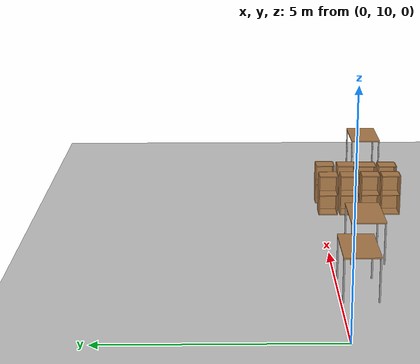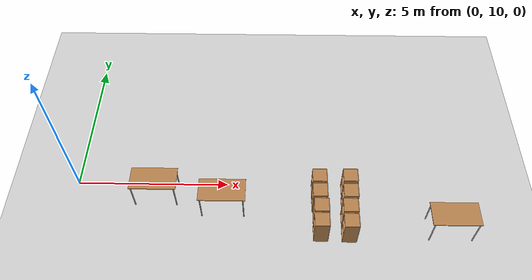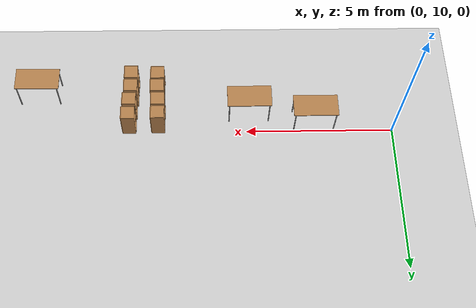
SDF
<sdf version="1.7">
 <world name="default">
  <model name="ground_plane">
   <static>1</static>
   <link name="link">
    <collision name="collision">
     <geometry><plane><normal>0 0 1</normal><size>100 100</size></plane></geometry>
     <surface><friction><ode><mu>100</mu><mu2>50</mu2></ode></friction></surface>
    </collision>
    <visual name="visual">
     <cast_shadows>0</cast_shadows>
     <geometry><plane><normal>0 0 1</normal><size>100 100</size></plane></geometry>
     <material>
      <script><uri>file://media/materials/scripts/gazebo.material</uri><name>Gazebo/Grey</name></script>
     </material>
    </visual>
   </link>
  </model>
  <model name="table_0_clone">
   <static>1</static>
   <link name="link">
    <collision name="surface">
     <pose>0 0 1 0 -0 0</pose>
     <geometry><box><size>1.5 0.8 0.03</size></box></geometry>
     <surface><friction><ode><mu>0.6</mu><mu2>0.6</mu2></ode></friction></surface>
    </collision>
    <visual name="visual1">
     <pose>0 0 1 0 -0 0</pose>
     <geometry><box><size>1.5 0.8 0.03</size></box></geometry>
     <material>
      <script><uri>file://media/materials/scripts/gazebo.material</uri><name>Gazebo/Wood</name></script>
     </material>
    </visual>
    <collision name="front_left_leg">
     <pose>0.68 0.38 0.5 0 -0 0</pose>
     <geometry><cylinder><radius>0.02</radius><length>1</length></cylinder></geometry>
    </collision>
    <visual name="front_left_leg">
     <pose>0.68 0.38 0.5 0 -0 0</pose>
     <geometry><cylinder><radius>0.02</radius><length>1</length></cylinder></geometry>
     <material>
      <script><uri>file://media/materials/scripts/gazebo.material</uri><name>Gazebo/Grey</name></script>
     </material>
    </visual>
    <collision name="front_right_leg">
     <pose>0.68 -0.38 0.5 0 -0 0</pose>
     <geometry><cylinder><radius>0.02</radius><length>1</length></cylinder></geometry>
    </collision>
    <visual name="front_right_leg">
     <pose>0.68 -0.38 0.5 0 -0 0</pose>
     <geometry><cylinder><radius>0.02</radius><length>1</length></cylinder></geometry>
     <material>
      <script><uri>file://media/materials/scripts/gazebo.material</uri><name>Gazebo/Grey</name></script>
     </material>
    </visual>
    <collision name="back_right_leg">
     <pose>-0.68 -0.38 0.5 0 -0 0</pose>
     <geometry><cylinder><radius>0.02</radius><length>1</length></cylinder></geometry>
    </collision>
    <visual name="back_right_leg">
     <pose>-0.68 -0.38 0.5 0 -0 0</pose>
     <geometry><cylinder><radius>0.02</radius><length>1</length></cylinder></geometry>
     <material>
      <script><uri>file://media/materials/scripts/gazebo.material</uri><name>Gazebo/Grey</name></script>
     </material>
    </visual>
    <collision name="back_left_leg">
     <pose>-0.68 0.38 0.5 0 -0 0</pose>
     <geometry><cylinder><radius>0.02</radius><length>1</length></cylinder></geometry>
    </collision>
    <visual name="back_left_leg">
     <pose>-0.68 0.38 0.5 0 -0 0</pose>
     <geometry><cylinder><radius>0.02</radius><length>1</length></cylinder></geometry>
     <material>
      <script><uri>file://media/materials/scripts/gazebo.material</uri><name>Gazebo/Grey</name></script>
     </material>
    </visual>
   </link>
   <pose>12.1609 8.42385 0 0 -0 0</pose>
  </model>
  <model name="table_0_clone_clone">
   <static>1</static>
   <link name="link">
    <collision name="surface">
     <pose>0 0 1 0 -0 0</pose>
     <geometry><box><size>1.5 0.8 0.03</size></box></geometry>
     <surface><friction><ode><mu>0.6</mu><mu2>0.6</mu2></ode></friction></surface>
    </collision>
    <visual name="visual1">
     <pose>0 0 1 0 -0 0</pose>
     <geometry><box><size>1.5 0.8 0.03</size></box></geometry>
     <material>
      <script><uri>file://media/materials/scripts/gazebo.material</uri><name>Gazebo/Wood</name></script>
     </material>
    </visual>
    <collision name="front_left_leg">
     <pose>0.68 0.38 0.5 0 -0 0</pose>
     <geometry><cylinder><radius>0.02</radius><length>1</length></cylinder></geometry>
    </collision>
    <visual name="front_left_leg">
     <pose>0.68 0.38 0.5 0 -0 0</pose>
     <geometry><cylinder><radius>0.02</radius><length>1</length></cylinder></geometry>
     <material>
      <script><uri>file://media/materials/scripts/gazebo.material</uri><name>Gazebo/Grey</name></script>
     </material>
    </visual>
    <collision name="front_right_leg">
     <pose>0.68 -0.38 0.5 0 -0 0</pose>
     <geometry><cylinder><radius>0.02</radius><length>1</length></cylinder></geometry>
    </collision>
    <visual name="front_right_leg">
     <pose>0.68 -0.38 0.5 0 -0 0</pose>
     <geometry><cylinder><radius>0.02</radius><length>1</length></cylinder></geometry>
     <material>
      <script><uri>file://media/materials/scripts/gazebo.material</uri><name>Gazebo/Grey</name></script>
     </material>
    </visual>
    <collision name="back_right_leg">
     <pose>-0.68 -0.38 0.5 0 -0 0</pose>
     <geometry><cylinder><radius>0.02</radius><length>1</length></cylinder></geometry>
    </collision>
    <visual name="back_right_leg">
     <pose>-0.68 -0.38 0.5 0 -0 0</pose>
     <geometry><cylinder><radius>0.02</radius><length>1</length></cylinder></geometry>
     <material>
      <script><uri>file://media/materials/scripts/gazebo.material</uri><name>Gazebo/Grey</name></script>
     </material>
    </visual>
    <collision name="back_left_leg">
     <pose>-0.68 0.38 0.5 0 -0 0</pose>
     <geometry><cylinder><radius>0.02</radius><length>1</length></cylinder></geometry>
    </collision>
    <visual name="back_left_leg">
     <pose>-0.68 0.38 0.5 0 -0 0</pose>
     <geometry><cylinder><radius>0.02</radius><length>1</length></cylinder></geometry>
     <material>
      <script><uri>file://media/materials/scripts/gazebo.material</uri><name>Gazebo/Grey</name></script>
     </material>
    </visual>
   </link>
   <pose>4.91658 9.1879 0 0 -0 0</pose>
  </model>
  <model name="table_0_clone_clone_0">
   <static>1</static>
   <link name="link">
    <collision name="surface">
     <pose>0 0 1 0 -0 0</pose>
     <geometry><box><size>1.5 0.8 0.03</size></box></geometry>
     <surface><friction><ode><mu>0.6</mu><mu2>0.6</mu2></ode></friction></surface>
    </collision>
    <visual name="visual1">
     <pose>0 0 1 0 -0 0</pose>
     <geometry><box><size>1.5 0.8 0.03</size></box></geometry>
     <material>
      <script><uri>file://media/materials/scripts/gazebo.material</uri><name>Gazebo/Wood</name></script>
     </material>
    </visual>
    <collision name="front_left_leg">
     <pose>0.68 0.38 0.5 0 -0 0</pose>
     <geometry><cylinder><radius>0.02</radius><length>1</length></cylinder></geometry>
    </collision>
    <visual name="front_left_leg">
     <pose>0.68 0.38 0.5 0 -0 0</pose>
     <geometry><cylinder><radius>0.02</radius><length>1</length></cylinder></geometry>
     <material>
      <script><uri>file://media/materials/scripts/gazebo.material</uri><name>Gazebo/Grey</name></script>
     </material>
    </visual>
    <collision name="front_right_leg">
     <pose>0.68 -0.38 0.5 0 -0 0</pose>
     <geometry><cylinder><radius>0.02</radius><length>1</length></cylinder></geometry>
    </collision>
    <visual name="front_right_leg">
     <pose>0.68 -0.38 0.5 0 -0 0</pose>
     <geometry><cylinder><radius>0.02</radius><length>1</length></cylinder></geometry>
     <material>
      <script><uri>file://media/materials/scripts/gazebo.material</uri><name>Gazebo/Grey</name></script>
     </material>
    </visual>
    <collision name="back_right_leg">
     <pose>-0.68 -0.38 0.5 0 -0 0</pose>
     <geometry><cylinder><radius>0.02</radius><length>1</length></cylinder></geometry>
    </collision>
    <visual name="back_right_leg">
     <pose>-0.68 -0.38 0.5 0 -0 0</pose>
     <geometry><cylinder><radius>0.02</radius><length>1</length></cylinder></geometry>
     <material>
      <script><uri>file://media/materials/scripts/gazebo.material</uri><name>Gazebo/Grey</name></script>
     </material>
    </visual>
    <collision name="back_left_leg">
     <pose>-0.68 0.38 0.5 0 -0 0</pose>
     <geometry><cylinder><radius>0.02</radius><length>1</length></cylinder></geometry>
    </collision>
    <visual name="back_left_leg">
     <pose>-0.68 0.38 0.5 0 -0 0</pose>
     <geometry><cylinder><radius>0.02</radius><length>1</length></cylinder></geometry>
     <material>
      <script><uri>file://media/materials/scripts/gazebo.material</uri><name>Gazebo/Grey</name></script>
     </material>
    </visual>
   </link>
   <pose>2.69967 9.5794 0 0 -0 0</pose>
  </model>
  <model name="cabinet_3_clone">
   <static>1</static>
   <link name="cabinet_bottom_plate">
    <inertial>
     <pose>0 0 -1 0 -0 0</pose>
     <inertia><ixx>2.05</ixx><ixy>0</ixy><ixz>0</ixz><iyy>2.05</iyy><iyz>0</iyz><izz>2.05</izz></inertia>
     <mass>25</mass>
    </inertial>
    <collision name="cabinet_bottom_plate_geom">
     <pose>0 0 0.01 0 -0 0</pose>
     <geometry><box><size>0.45 0.45 0.02</size></box></geometry>
    </collision>
    <visual name="cabinet_bottom_plate_geom_visual">
     <pose>0 0 0.01 0 -0 0</pose>
     <geometry><box><size>0.45 0.45 0.02</size></box></geometry>
     <material>
      <script><uri>file://media/materials/scripts/gazebo.material</uri><name>Gazebo/Wood</name></script>
     </material>
    </visual>
    <collision name="cabinet_bottom_plate_geom_cabinet_back_plate">
     <pose>0.235 0 0.51 0 -0 0</pose>
     <geometry><box><size>0.02 0.45 1.02</size></box></geometry>
    </collision>
    <visual name="cabinet_bottom_plate_geom_cabinet_back_plate_visual">
     <pose>0.235 0 0.51 0 -0 0</pose>
     <geometry><box><size>0.02 0.45 1.02</size></box></geometry>
     <material>
      <script><uri>file://media/materials/scripts/gazebo.material</uri><name>Gazebo/Wood</name></script>
     </material>
    </visual>
    <collision name="cabinet_bottom_plate_geom_cabinet_left_plate">
     <pose>0 0.235 0.51 0 -0 0</pose>
     <geometry><box><size>0.45 0.02 1.02</size></box></geometry>
    </collision>
    <visual name="cabinet_bottom_plate_geom_cabinet_left_plate_visual">
     <pose>0 0.235 0.51 0 -0 0</pose>
     <geometry><box><size>0.45 0.02 1.02</size></box></geometry>
     <material>
      <script><uri>file://media/materials/scripts/gazebo.material</uri><name>Gazebo/Wood</name></script>
     </material>
    </visual>
    <collision name="cabinet_bottom_plate_geom_cabinet_middle_plate">
     <pose>0 0 0.51 0 -0 0</pose>
     <geometry><box><size>0.45 0.45 0.02</size></box></geometry>
    </collision>
    <visual name="cabinet_bottom_plate_geom_cabinet_middle_plate_visual">
     <pose>0 0 0.51 0 -0 0</pose>
     <geometry><box><size>0.45 0.45 0.02</size></box></geometry>
     <material>
      <script><uri>file://media/materials/scripts/gazebo.material</uri><name>Gazebo/Wood</name></script>
     </material>
    </visual>
    <collision name="cabinet_bottom_plate_geom_cabinet_right_plate">
     <pose>0 -0.235 0.51 0 -0 0</pose>
     <geometry><box><size>0.45 0.02 1.02</size></box></geometry>
    </collision>
    <visual name="cabinet_bottom_plate_geom_cabinet_right_plate_visual">
     <pose>0 -0.235 0.51 0 -0 0</pose>
     <geometry><box><size>0.45 0.02 1.02</size></box></geometry>
     <material>
      <script><uri>file://media/materials/scripts/gazebo.material</uri><name>Gazebo/Wood</name></script>
     </material>
    </visual>
    <collision name="cabinet_bottom_plate_geom_cabinet_top_plate">
     <pose>0 0 1.01 0 -0 0</pose>
     <geometry><box><size>0.45 0.45 0.02</size></box></geometry>
    </collision>
    <visual name="cabinet_bottom_plate_geom_cabinet_top_plate_visual">
     <pose>0 0 1.01 0 -0 0</pose>
     <geometry><box><size>0.45 0.45 0.02</size></box></geometry>
     <material>
      <script><uri>file://media/materials/scripts/gazebo.material</uri><name>Gazebo/Wood</name></script>
     </material>
    </visual>
   </link>
   <pose>8.95329 8.16551 0 0 -0 0</pose>
  </model>
  <model name="cabinet_3_clone_0">
   <static>1</static>
   <link name="cabinet_bottom_plate">
    <inertial>
     <pose>0 0 -1 0 -0 0</pose>
     <inertia><ixx>2.05</ixx><ixy>0</ixy><ixz>0</ixz><iyy>2.05</iyy><iyz>0</iyz><izz>2.05</izz></inertia>
     <mass>25</mass>
    </inertial>
    <collision name="cabinet_bottom_plate_geom">
     <pose>0 0 0.01 0 -0 0</pose>
     <geometry><box><size>0.45 0.45 0.02</size></box></geometry>
    </collision>
    <visual name="cabinet_bottom_plate_geom_visual">
     <pose>0 0 0.01 0 -0 0</pose>
     <geometry><box><size>0.45 0.45 0.02</size></box></geometry>
     <material>
      <script><uri>file://media/materials/scripts/gazebo.material</uri><name>Gazebo/Wood</name></script>
     </material>
    </visual>
    <collision name="cabinet_bottom_plate_geom_cabinet_back_plate">
     <pose>0.235 0 0.51 0 -0 0</pose>
     <geometry><box><size>0.02 0.45 1.02</size></box></geometry>
    </collision>
    <visual name="cabinet_bottom_plate_geom_cabinet_back_plate_visual">
     <pose>0.235 0 0.51 0 -0 0</pose>
     <geometry><box><size>0.02 0.45 1.02</size></box></geometry>
     <material>
      <script><uri>file://media/materials/scripts/gazebo.material</uri><name>Gazebo/Wood</name></script>
     </material>
    </visual>
    <collision name="cabinet_bottom_plate_geom_cabinet_left_plate">
     <pose>0 0.235 0.51 0 -0 0</pose>
     <geometry><box><size>0.45 0.02 1.02</size></box></geometry>
    </collision>
    <visual name="cabinet_bottom_plate_geom_cabinet_left_plate_visual">
     <pose>0 0.235 0.51 0 -0 0</pose>
     <geometry><box><size>0.45 0.02 1.02</size></box></geometry>
     <material>
      <script><uri>file://media/materials/scripts/gazebo.material</uri><name>Gazebo/Wood</name></script>
     </material>
    </visual>
    <collision name="cabinet_bottom_plate_geom_cabinet_middle_plate">
     <pose>0 0 0.51 0 -0 0</pose>
     <geometry><box><size>0.45 0.45 0.02</size></box></geometry>
    </collision>
    <visual name="cabinet_bottom_plate_geom_cabinet_middle_plate_visual">
     <pose>0 0 0.51 0 -0 0</pose>
     <geometry><box><size>0.45 0.45 0.02</size></box></geometry>
     <material>
      <script><uri>file://media/materials/scripts/gazebo.material</uri><name>Gazebo/Wood</name></script>
     </material>
    </visual>
    <collision name="cabinet_bottom_plate_geom_cabinet_right_plate">
     <pose>0 -0.235 0.51 0 -0 0</pose>
     <geometry><box><size>0.45 0.02 1.02</size></box></geometry>
    </collision>
    <visual name="cabinet_bottom_plate_geom_cabinet_right_plate_visual">
     <pose>0 -0.235 0.51 0 -0 0</pose>
     <geometry><box><size>0.45 0.02 1.02</size></box></geometry>
     <material>
      <script><uri>file://media/materials/scripts/gazebo.material</uri><name>Gazebo/Wood</name></script>
     </material>
    </visual>
    <collision name="cabinet_bottom_plate_geom_cabinet_top_plate">
     <pose>0 0 1.01 0 -0 0</pose>
     <geometry><box><size>0.45 0.45 0.02</size></box></geometry>
    </collision>
    <visual name="cabinet_bottom_plate_geom_cabinet_top_plate_visual">
     <pose>0 0 1.01 0 -0 0</pose>
     <geometry><box><size>0.45 0.45 0.02</size></box></geometry>
     <material>
      <script><uri>file://media/materials/scripts/gazebo.material</uri><name>Gazebo/Wood</name></script>
     </material>
    </visual>
   </link>
   <pose>8.96151 8.69848 0 0 -0 0</pose>
  </model>
  <model name="cabinet_3_clone_1">
   <static>1</static>
   <link name="cabinet_bottom_plate">
    <inertial>
     <pose>0 0 -1 0 -0 0</pose>
     <inertia><ixx>2.05</ixx><ixy>0</ixy><ixz>0</ixz><iyy>2.05</iyy><iyz>0</iyz><izz>2.05</izz></inertia>
     <mass>25</mass>
    </inertial>
    <collision name="cabinet_bottom_plate_geom">
     <pose>0 0 0.01 0 -0 0</pose>
     <geometry><box><size>0.45 0.45 0.02</size></box></geometry>
    </collision>
    <visual name="cabinet_bottom_plate_geom_visual">
     <pose>0 0 0.01 0 -0 0</pose>
     <geometry><box><size>0.45 0.45 0.02</size></box></geometry>
     <material>
      <script><uri>file://media/materials/scripts/gazebo.material</uri><name>Gazebo/Wood</name></script>
     </material>
    </visual>
    <collision name="cabinet_bottom_plate_geom_cabinet_back_plate">
     <pose>0.235 0 0.51 0 -0 0</pose>
     <geometry><box><size>0.02 0.45 1.02</size></box></geometry>
    </collision>
    <visual name="cabinet_bottom_plate_geom_cabinet_back_plate_visual">
     <pose>0.235 0 0.51 0 -0 0</pose>
     <geometry><box><size>0.02 0.45 1.02</size></box></geometry>
     <material>
      <script><uri>file://media/materials/scripts/gazebo.material</uri><name>Gazebo/Wood</name></script>
     </material>
    </visual>
    <collision name="cabinet_bottom_plate_geom_cabinet_left_plate">
     <pose>0 0.235 0.51 0 -0 0</pose>
     <geometry><box><size>0.45 0.02 1.02</size></box></geometry>
    </collision>
    <visual name="cabinet_bottom_plate_geom_cabinet_left_plate_visual">
     <pose>0 0.235 0.51 0 -0 0</pose>
     <geometry><box><size>0.45 0.02 1.02</size></box></geometry>
     <material>
      <script><uri>file://media/materials/scripts/gazebo.material</uri><name>Gazebo/Wood</name></script>
     </material>
    </visual>
    <collision name="cabinet_bottom_plate_geom_cabinet_middle_plate">
     <pose>0 0 0.51 0 -0 0</pose>
     <geometry><box><size>0.45 0.45 0.02</size></box></geometry>
    </collision>
    <visual name="cabinet_bottom_plate_geom_cabinet_middle_plate_visual">
     <pose>0 0 0.51 0 -0 0</pose>
     <geometry><box><size>0.45 0.45 0.02</size></box></geometry>
     <material>
      <script><uri>file://media/materials/scripts/gazebo.material</uri><name>Gazebo/Wood</name></script>
     </material>
    </visual>
    <collision name="cabinet_bottom_plate_geom_cabinet_right_plate">
     <pose>0 -0.235 0.51 0 -0 0</pose>
     <geometry><box><size>0.45 0.02 1.02</size></box></geometry>
    </collision>
    <visual name="cabinet_bottom_plate_geom_cabinet_right_plate_visual">
     <pose>0 -0.235 0.51 0 -0 0</pose>
     <geometry><box><size>0.45 0.02 1.02</size></box></geometry>
     <material>
      <script><uri>file://media/materials/scripts/gazebo.material</uri><name>Gazebo/Wood</name></script>
     </material>
    </visual>
    <collision name="cabinet_bottom_plate_geom_cabinet_top_plate">
     <pose>0 0 1.01 0 -0 0</pose>
     <geometry><box><size>0.45 0.45 0.02</size></box></geometry>
    </collision>
    <visual name="cabinet_bottom_plate_geom_cabinet_top_plate_visual">
     <pose>0 0 1.01 0 -0 0</pose>
     <geometry><box><size>0.45 0.45 0.02</size></box></geometry>
     <material>
      <script><uri>file://media/materials/scripts/gazebo.material</uri><name>Gazebo/Wood</name></script>
     </material>
    </visual>
   </link>
   <pose>9.001 9.23642 0 0 -0 0</pose>
  </model>
  <model name="cabinet_3_clone_2">
   <static>1</static>
   <link name="cabinet_bottom_plate">
    <inertial>
     <pose>0 0 -1 0 -0 0</pose>
     <inertia><ixx>2.05</ixx><ixy>0</ixy><ixz>0</ixz><iyy>2.05</iyy><iyz>0</iyz><izz>2.05</izz></inertia>
     <mass>25</mass>
    </inertial>
    <collision name="cabinet_bottom_plate_geom">
     <pose>0 0 0.01 0 -0 0</pose>
     <geometry><box><size>0.45 0.45 0.02</size></box></geometry>
    </collision>
    <visual name="cabinet_bottom_plate_geom_visual">
     <pose>0 0 0.01 0 -0 0</pose>
     <geometry><box><size>0.45 0.45 0.02</size></box></geometry>
     <material>
      <script><uri>file://media/materials/scripts/gazebo.material</uri><name>Gazebo/Wood</name></script>
     </material>
    </visual>
    <collision name="cabinet_bottom_plate_geom_cabinet_back_plate">
     <pose>0.235 0 0.51 0 -0 0</pose>
     <geometry><box><size>0.02 0.45 1.02</size></box></geometry>
    </collision>
    <visual name="cabinet_bottom_plate_geom_cabinet_back_plate_visual">
     <pose>0.235 0 0.51 0 -0 0</pose>
     <geometry><box><size>0.02 0.45 1.02</size></box></geometry>
     <material>
      <script><uri>file://media/materials/scripts/gazebo.material</uri><name>Gazebo/Wood</name></script>
     </material>
    </visual>
    <collision name="cabinet_bottom_plate_geom_cabinet_left_plate">
     <pose>0 0.235 0.51 0 -0 0</pose>
     <geometry><box><size>0.45 0.02 1.02</size></box></geometry>
    </collision>
    <visual name="cabinet_bottom_plate_geom_cabinet_left_plate_visual">
     <pose>0 0.235 0.51 0 -0 0</pose>
     <geometry><box><size>0.45 0.02 1.02</size></box></geometry>
     <material>
      <script><uri>file://media/materials/scripts/gazebo.material</uri><name>Gazebo/Wood</name></script>
     </material>
    </visual>
    <collision name="cabinet_bottom_plate_geom_cabinet_middle_plate">
     <pose>0 0 0.51 0 -0 0</pose>
     <geometry><box><size>0.45 0.45 0.02</size></box></geometry>
    </collision>
    <visual name="cabinet_bottom_plate_geom_cabinet_middle_plate_visual">
     <pose>0 0 0.51 0 -0 0</pose>
     <geometry><box><size>0.45 0.45 0.02</size></box></geometry>
     <material>
      <script><uri>file://media/materials/scripts/gazebo.material</uri><name>Gazebo/Wood</name></script>
     </material>
    </visual>
    <collision name="cabinet_bottom_plate_geom_cabinet_right_plate">
     <pose>0 -0.235 0.51 0 -0 0</pose>
     <geometry><box><size>0.45 0.02 1.02</size></box></geometry>
    </collision>
    <visual name="cabinet_bottom_plate_geom_cabinet_right_plate_visual">
     <pose>0 -0.235 0.51 0 -0 0</pose>
     <geometry><box><size>0.45 0.02 1.02</size></box></geometry>
     <material>
      <script><uri>file://media/materials/scripts/gazebo.material</uri><name>Gazebo/Wood</name></script>
     </material>
    </visual>
    <collision name="cabinet_bottom_plate_geom_cabinet_top_plate">
     <pose>0 0 1.01 0 -0 0</pose>
     <geometry><box><size>0.45 0.45 0.02</size></box></geometry>
    </collision>
    <visual name="cabinet_bottom_plate_geom_cabinet_top_plate_visual">
     <pose>0 0 1.01 0 -0 0</pose>
     <geometry><box><size>0.45 0.45 0.02</size></box></geometry>
     <material>
      <script><uri>file://media/materials/scripts/gazebo.material</uri><name>Gazebo/Wood</name></script>
     </material>
    </visual>
   </link>
   <pose>9.02312 9.79517 0 0 -0 0</pose>
  </model>
  <model name="cabinet_3_clone_3">
   <static>1</static>
   <link name="cabinet_bottom_plate">
    <inertial>
     <pose>0 0 -1 0 -0 0</pose>
     <inertia><ixx>2.05</ixx><ixy>0</ixy><ixz>0</ixz><iyy>2.05</iyy><iyz>0</iyz><izz>2.05</izz></inertia>
     <mass>25</mass>
    </inertial>
    <collision name="cabinet_bottom_plate_geom">
     <pose>0 0 0.01 0 -0 0</pose>
     <geometry><box><size>0.45 0.45 0.02</size></box></geometry>
    </collision>
    <visual name="cabinet_bottom_plate_geom_visual">
     <pose>0 0 0.01 0 -0 0</pose>
     <geometry><box><size>0.45 0.45 0.02</size></box></geometry>
     <material>
      <script><uri>file://media/materials/scripts/gazebo.material</uri><name>Gazebo/Wood</name></script>
     </material>
    </visual>
    <collision name="cabinet_bottom_plate_geom_cabinet_back_plate">
     <pose>0.235 0 0.51 0 -0 0</pose>
     <geometry><box><size>0.02 0.45 1.02</size></box></geometry>
    </collision>
    <visual name="cabinet_bottom_plate_geom_cabinet_back_plate_visual">
     <pose>0.235 0 0.51 0 -0 0</pose>
     <geometry><box><size>0.02 0.45 1.02</size></box></geometry>
     <material>
      <script><uri>file://media/materials/scripts/gazebo.material</uri><name>Gazebo/Wood</name></script>
     </material>
    </visual>
    <collision name="cabinet_bottom_plate_geom_cabinet_left_plate">
     <pose>0 0.235 0.51 0 -0 0</pose>
     <geometry><box><size>0.45 0.02 1.02</size></box></geometry>
    </collision>
    <visual name="cabinet_bottom_plate_geom_cabinet_left_plate_visual">
     <pose>0 0.235 0.51 0 -0 0</pose>
     <geometry><box><size>0.45 0.02 1.02</size></box></geometry>
     <material>
      <script><uri>file://media/materials/scripts/gazebo.material</uri><name>Gazebo/Wood</name></script>
     </material>
    </visual>
    <collision name="cabinet_bottom_plate_geom_cabinet_middle_plate">
     <pose>0 0 0.51 0 -0 0</pose>
     <geometry><box><size>0.45 0.45 0.02</size></box></geometry>
    </collision>
    <visual name="cabinet_bottom_plate_geom_cabinet_middle_plate_visual">
     <pose>0 0 0.51 0 -0 0</pose>
     <geometry><box><size>0.45 0.45 0.02</size></box></geometry>
     <material>
      <script><uri>file://media/materials/scripts/gazebo.material</uri><name>Gazebo/Wood</name></script>
     </material>
    </visual>
    <collision name="cabinet_bottom_plate_geom_cabinet_right_plate">
     <pose>0 -0.235 0.51 0 -0 0</pose>
     <geometry><box><size>0.45 0.02 1.02</size></box></geometry>
    </collision>
    <visual name="cabinet_bottom_plate_geom_cabinet_right_plate_visual">
     <pose>0 -0.235 0.51 0 -0 0</pose>
     <geometry><box><size>0.45 0.02 1.02</size></box></geometry>
     <material>
      <script><uri>file://media/materials/scripts/gazebo.material</uri><name>Gazebo/Wood</name></script>
     </material>
    </visual>
    <collision name="cabinet_bottom_plate_geom_cabinet_top_plate">
     <pose>0 0 1.01 0 -0 0</pose>
     <geometry><box><size>0.45 0.45 0.02</size></box></geometry>
    </collision>
    <visual name="cabinet_bottom_plate_geom_cabinet_top_plate_visual">
     <pose>0 0 1.01 0 -0 0</pose>
     <geometry><box><size>0.45 0.45 0.02</size></box></geometry>
     <material>
      <script><uri>file://media/materials/scripts/gazebo.material</uri><name>Gazebo/Wood</name></script>
     </material>
    </visual>
   </link>
   <pose>8.0487 8.18604 0 0 -0 0</pose>
  </model>
  <model name="cabinet_3_clone_4">
   <static>1</static>
   <link name="cabinet_bottom_plate">
    <inertial>
     <pose>0 0 -1 0 -0 0</pose>
     <inertia><ixx>2.05</ixx><ixy>0</ixy><ixz>0</ixz><iyy>2.05</iyy><iyz>0</iyz><izz>2.05</izz></inertia>
     <mass>25</mass>
    </inertial>
    <collision name="cabinet_bottom_plate_geom">
     <pose>0 0 0.01 0 -0 0</pose>
     <geometry><box><size>0.45 0.45 0.02</size></box></geometry>
    </collision>
    <visual name="cabinet_bottom_plate_geom_visual">
     <pose>0 0 0.01 0 -0 0</pose>
     <geometry><box><size>0.45 0.45 0.02</size></box></geometry>
     <material>
      <script><uri>file://media/materials/scripts/gazebo.material</uri><name>Gazebo/Wood</name></script>
     </material>
    </visual>
    <collision name="cabinet_bottom_plate_geom_cabinet_back_plate">
     <pose>0.235 0 0.51 0 -0 0</pose>
     <geometry><box><size>0.02 0.45 1.02</size></box></geometry>
    </collision>
    <visual name="cabinet_bottom_plate_geom_cabinet_back_plate_visual">
     <pose>0.235 0 0.51 0 -0 0</pose>
     <geometry><box><size>0.02 0.45 1.02</size></box></geometry>
     <material>
      <script><uri>file://media/materials/scripts/gazebo.material</uri><name>Gazebo/Wood</name></script>
     </material>
    </visual>
    <collision name="cabinet_bottom_plate_geom_cabinet_left_plate">
     <pose>0 0.235 0.51 0 -0 0</pose>
     <geometry><box><size>0.45 0.02 1.02</size></box></geometry>
    </collision>
    <visual name="cabinet_bottom_plate_geom_cabinet_left_plate_visual">
     <pose>0 0.235 0.51 0 -0 0</pose>
     <geometry><box><size>0.45 0.02 1.02</size></box></geometry>
     <material>
      <script><uri>file://media/materials/scripts/gazebo.material</uri><name>Gazebo/Wood</name></script>
     </material>
    </visual>
    <collision name="cabinet_bottom_plate_geom_cabinet_middle_plate">
     <pose>0 0 0.51 0 -0 0</pose>
     <geometry><box><size>0.45 0.45 0.02</size></box></geometry>
    </collision>
    <visual name="cabinet_bottom_plate_geom_cabinet_middle_plate_visual">
     <pose>0 0 0.51 0 -0 0</pose>
     <geometry><box><size>0.45 0.45 0.02</size></box></geometry>
     <material>
      <script><uri>file://media/materials/scripts/gazebo.material</uri><name>Gazebo/Wood</name></script>
     </material>
    </visual>
    <collision name="cabinet_bottom_plate_geom_cabinet_right_plate">
     <pose>0 -0.235 0.51 0 -0 0</pose>
     <geometry><box><size>0.45 0.02 1.02</size></box></geometry>
    </collision>
    <visual name="cabinet_bottom_plate_geom_cabinet_right_plate_visual">
     <pose>0 -0.235 0.51 0 -0 0</pose>
     <geometry><box><size>0.45 0.02 1.02</size></box></geometry>
     <material>
      <script><uri>file://media/materials/scripts/gazebo.material</uri><name>Gazebo/Wood</name></script>
     </material>
    </visual>
    <collision name="cabinet_bottom_plate_geom_cabinet_top_plate">
     <pose>0 0 1.01 0 -0 0</pose>
     <geometry><box><size>0.45 0.45 0.02</size></box></geometry>
    </collision>
    <visual name="cabinet_bottom_plate_geom_cabinet_top_plate_visual">
     <pose>0 0 1.01 0 -0 0</pose>
     <geometry><box><size>0.45 0.45 0.02</size></box></geometry>
     <material>
      <script><uri>file://media/materials/scripts/gazebo.material</uri><name>Gazebo/Wood</name></script>
     </material>
    </visual>
   </link>
   <pose>8.05788 8.70257 0 0 -0 0</pose>
  </model>
  <model name="cabinet_3_clone_5">
   <static>1</static>
   <link name="cabinet_bottom_plate">
    <inertial>
     <pose>0 0 -1 0 -0 0</pose>
     <inertia><ixx>2.05</ixx><ixy>0</ixy><ixz>0</ixz><iyy>2.05</iyy><iyz>0</iyz><izz>2.05</izz></inertia>
     <mass>25</mass>
    </inertial>
    <collision name="cabinet_bottom_plate_geom">
     <pose>0 0 0.01 0 -0 0</pose>
     <geometry><box><size>0.45 0.45 0.02</size></box></geometry>
    </collision>
    <visual name="cabinet_bottom_plate_geom_visual">
     <pose>0 0 0.01 0 -0 0</pose>
     <geometry><box><size>0.45 0.45 0.02</size></box></geometry>
     <material>
      <script><uri>file://media/materials/scripts/gazebo.material</uri><name>Gazebo/Wood</name></script>
     </material>
    </visual>
    <collision name="cabinet_bottom_plate_geom_cabinet_back_plate">
     <pose>0.235 0 0.51 0 -0 0</pose>
     <geometry><box><size>0.02 0.45 1.02</size></box></geometry>
    </collision>
    <visual name="cabinet_bottom_plate_geom_cabinet_back_plate_visual">
     <pose>0.235 0 0.51 0 -0 0</pose>
     <geometry><box><size>0.02 0.45 1.02</size></box></geometry>
     <material>
      <script><uri>file://media/materials/scripts/gazebo.material</uri><name>Gazebo/Wood</name></script>
     </material>
    </visual>
    <collision name="cabinet_bottom_plate_geom_cabinet_left_plate">
     <pose>0 0.235 0.51 0 -0 0</pose>
     <geometry><box><size>0.45 0.02 1.02</size></box></geometry>
    </collision>
    <visual name="cabinet_bottom_plate_geom_cabinet_left_plate_visual">
     <pose>0 0.235 0.51 0 -0 0</pose>
     <geometry><box><size>0.45 0.02 1.02</size></box></geometry>
     <material>
      <script><uri>file://media/materials/scripts/gazebo.material</uri><name>Gazebo/Wood</name></script>
     </material>
    </visual>
    <collision name="cabinet_bottom_plate_geom_cabinet_middle_plate">
     <pose>0 0 0.51 0 -0 0</pose>
     <geometry><box><size>0.45 0.45 0.02</size></box></geometry>
    </collision>
    <visual name="cabinet_bottom_plate_geom_cabinet_middle_plate_visual">
     <pose>0 0 0.51 0 -0 0</pose>
     <geometry><box><size>0.45 0.45 0.02</size></box></geometry>
     <material>
      <script><uri>file://media/materials/scripts/gazebo.material</uri><name>Gazebo/Wood</name></script>
     </material>
    </visual>
    <collision name="cabinet_bottom_plate_geom_cabinet_right_plate">
     <pose>0 -0.235 0.51 0 -0 0</pose>
     <geometry><box><size>0.45 0.02 1.02</size></box></geometry>
    </collision>
    <visual name="cabinet_bottom_plate_geom_cabinet_right_plate_visual">
     <pose>0 -0.235 0.51 0 -0 0</pose>
     <geometry><box><size>0.45 0.02 1.02</size></box></geometry>
     <material>
      <script><uri>file://media/materials/scripts/gazebo.material</uri><name>Gazebo/Wood</name></script>
     </material>
    </visual>
    <collision name="cabinet_bottom_plate_geom_cabinet_top_plate">
     <pose>0 0 1.01 0 -0 0</pose>
     <geometry><box><size>0.45 0.45 0.02</size></box></geometry>
    </collision>
    <visual name="cabinet_bottom_plate_geom_cabinet_top_plate_visual">
     <pose>0 0 1.01 0 -0 0</pose>
     <geometry><box><size>0.45 0.45 0.02</size></box></geometry>
     <material>
      <script><uri>file://media/materials/scripts/gazebo.material</uri><name>Gazebo/Wood</name></script>
     </material>
    </visual>
   </link>
   <pose>8.0298 9.23949 0 0 -0 0</pose>
  </model>
  <model name="cabinet_3_clone_6">
   <static>1</static>
   <link name="cabinet_bottom_plate">
    <inertial>
     <pose>0 0 -1 0 -0 0</pose>
     <inertia><ixx>2.05</ixx><ixy>0</ixy><ixz>0</ixz><iyy>2.05</iyy><iyz>0</iyz><izz>2.05</izz></inertia>
     <mass>25</mass>
    </inertial>
    <collision name="cabinet_bottom_plate_geom">
     <pose>0 0 0.01 0 -0 0</pose>
     <geometry><box><size>0.45 0.45 0.02</size></box></geometry>
    </collision>
    <visual name="cabinet_bottom_plate_geom_visual">
     <pose>0 0 0.01 0 -0 0</pose>
     <geometry><box><size>0.45 0.45 0.02</size></box></geometry>
     <material>
      <script><uri>file://media/materials/scripts/gazebo.material</uri><name>Gazebo/Wood</name></script>
     </material>
    </visual>
    <collision name="cabinet_bottom_plate_geom_cabinet_back_plate">
     <pose>0.235 0 0.51 0 -0 0</pose>
     <geometry><box><size>0.02 0.45 1.02</size></box></geometry>
    </collision>
    <visual name="cabinet_bottom_plate_geom_cabinet_back_plate_visual">
     <pose>0.235 0 0.51 0 -0 0</pose>
     <geometry><box><size>0.02 0.45 1.02</size></box></geometry>
     <material>
      <script><uri>file://media/materials/scripts/gazebo.material</uri><name>Gazebo/Wood</name></script>
     </material>
    </visual>
    <collision name="cabinet_bottom_plate_geom_cabinet_left_plate">
     <pose>0 0.235 0.51 0 -0 0</pose>
     <geometry><box><size>0.45 0.02 1.02</size></box></geometry>
    </collision>
    <visual name="cabinet_bottom_plate_geom_cabinet_left_plate_visual">
     <pose>0 0.235 0.51 0 -0 0</pose>
     <geometry><box><size>0.45 0.02 1.02</size></box></geometry>
     <material>
      <script><uri>file://media/materials/scripts/gazebo.material</uri><name>Gazebo/Wood</name></script>
     </material>
    </visual>
    <collision name="cabinet_bottom_plate_geom_cabinet_middle_plate">
     <pose>0 0 0.51 0 -0 0</pose>
     <geometry><box><size>0.45 0.45 0.02</size></box></geometry>
    </collision>
    <visual name="cabinet_bottom_plate_geom_cabinet_middle_plate_visual">
     <pose>0 0 0.51 0 -0 0</pose>
     <geometry><box><size>0.45 0.45 0.02</size></box></geometry>
     <material>
      <script><uri>file://media/materials/scripts/gazebo.material</uri><name>Gazebo/Wood</name></script>
     </material>
    </visual>
    <collision name="cabinet_bottom_plate_geom_cabinet_right_plate">
     <pose>0 -0.235 0.51 0 -0 0</pose>
     <geometry><box><size>0.45 0.02 1.02</size></box></geometry>
    </collision>
    <visual name="cabinet_bottom_plate_geom_cabinet_right_plate_visual">
     <pose>0 -0.235 0.51 0 -0 0</pose>
     <geometry><box><size>0.45 0.02 1.02</size></box></geometry>
     <material>
      <script><uri>file://media/materials/scripts/gazebo.material</uri><name>Gazebo/Wood</name></script>
     </material>
    </visual>
    <collision name="cabinet_bottom_plate_geom_cabinet_top_plate">
     <pose>0 0 1.01 0 -0 0</pose>
     <geometry><box><size>0.45 0.45 0.02</size></box></geometry>
    </collision>
    <visual name="cabinet_bottom_plate_geom_cabinet_top_plate_visual">
     <pose>0 0 1.01 0 -0 0</pose>
     <geometry><box><size>0.45 0.45 0.02</size></box></geometry>
     <material>
      <script><uri>file://media/materials/scripts/gazebo.material</uri><name>Gazebo/Wood</name></script>
     </material>
    </visual>
   </link>
   <pose>8.03105 9.77988 0 0 -0 0</pose>
  </model>
 </world>
</sdf>
